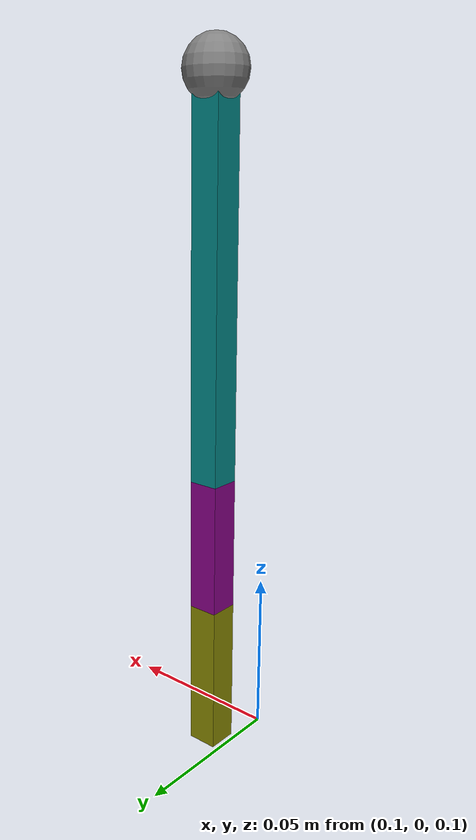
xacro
<?xml version="1.0"?>
<robot xmlns:xacro="http://www.ros.org/wiki/xacro" name="me212bot">
    <xacro:include filename="$(find me212arm)/model/me212arm.xacro" />

    <xacro:include filename="$(find me212base)/model/me212base.xacro" />

    <!-- connect robot moving base and robot arm base -->
    <joint name="joint_base_arm" type="fixed">
        <parent link="robot_base"/>
        <child link="arm_base"/>
        <origin xyz="0.12 0 0.11" />
    </joint>

</robot>

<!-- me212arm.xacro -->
<robot xmlns:xacro="http://www.ros.org/wiki/xacro" name="me212bot">

<xacro:property name="link1_length" value="0.069" />
<xacro:property name="link2_length" value="0.125" />
<xacro:property name="M_PI" value="3.1415926" />

<link name="arm_base">
    <visual>
        <geometry>
            <box size="0.01 0.01 0.05" />
        </geometry>
        <origin rpy="0 0 0" xyz="0 0 0"/>
        <material name="color1">
            <color rgba="0.5 0.5 0.0 1"/>
        </material>
    </visual>
</link>

<link name="link1">
    <visual>
        <geometry>
            <box size="0.01 0.01 ${link1_length}" />
        </geometry>
        <origin rpy="0 0 0" xyz="0 0 ${link1_length/2}"/>
        <material name="color2">
            <color rgba="0.5 0.0 0.5 1"/>
        </material>
    </visual>
</link>

<link name="link2">
    <visual>
        <geometry>
            <box size="0.01 0.01 ${link2_length}" />
        </geometry>
        <origin rpy="0 0 0" xyz="0 0 ${link2_length/2}"/>
        <material name="color3">
            <color rgba="0.0 0.5 0.5 1"/>
        </material>
    </visual>
</link>

<link name="tcp">
    <visual>
        <geometry>
            <sphere radius="0.01" />
        </geometry>
        <origin rpy="0 0 0" xyz="0 0 0"/>
        <material name="color4">
            <color rgba="0.5 0.5 0.5 1"/>
        </material>
    </visual>
</link>

<joint name="joint1" type="revolute">
    <parent link="arm_base"/>
    <child link="link1"/>
    <origin xyz="0 0 0" />
    <limit effort="300" lower="${-M_PI}" upper="${M_PI}" velocity="7.33"/>
    <axis xyz="0 -1 0"/>
</joint>

<joint name="joint2" type="revolute">
    <parent link="link1"/>
    <child link="link2"/>
    <origin xyz="0 0 ${link1_length}" />
    <limit effort="300" lower="${-M_PI}" upper="${M_PI}" velocity="7.33"/>
    <axis xyz="0 -1 0"/>
</joint>

<joint name="joint3" type="fixed">
    <parent link="link2"/>
    <child link="tcp"/>
    <origin xyz="0 0 ${link2_length}" />
</joint>

</robot>

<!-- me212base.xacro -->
<robot xmlns:xacro="http://www.ros.org/wiki/xacro" name="me212bot">

<link name="robot_base">
</link>
</robot>
